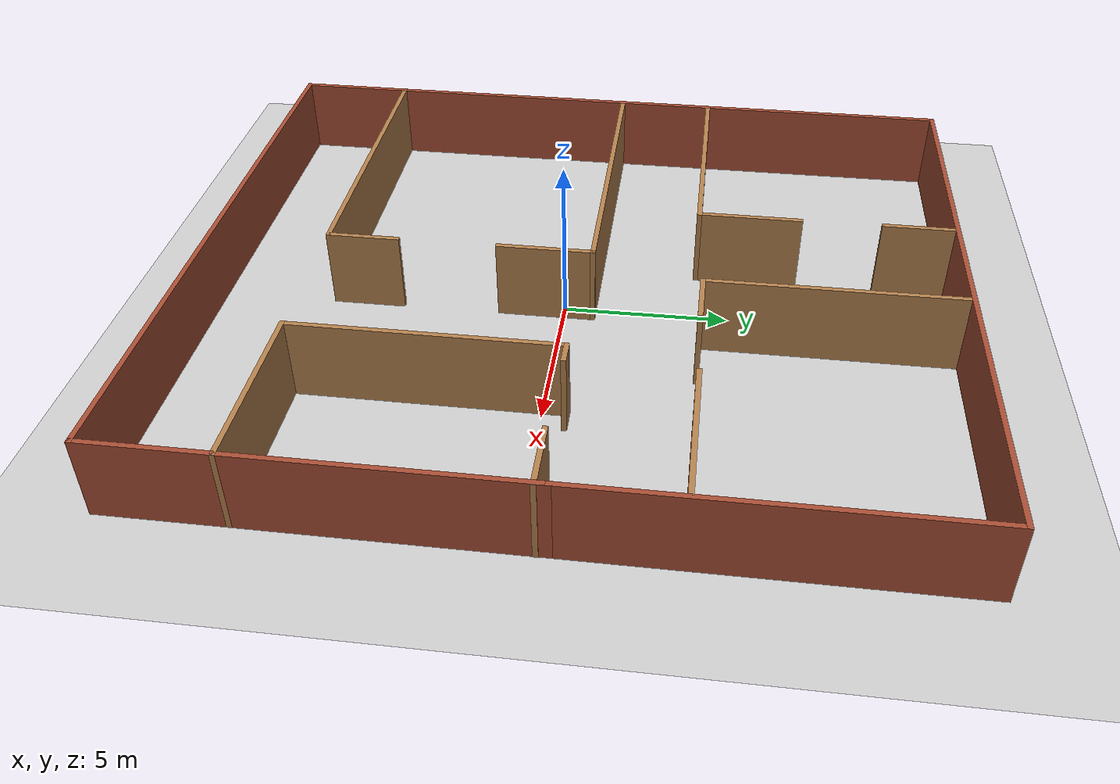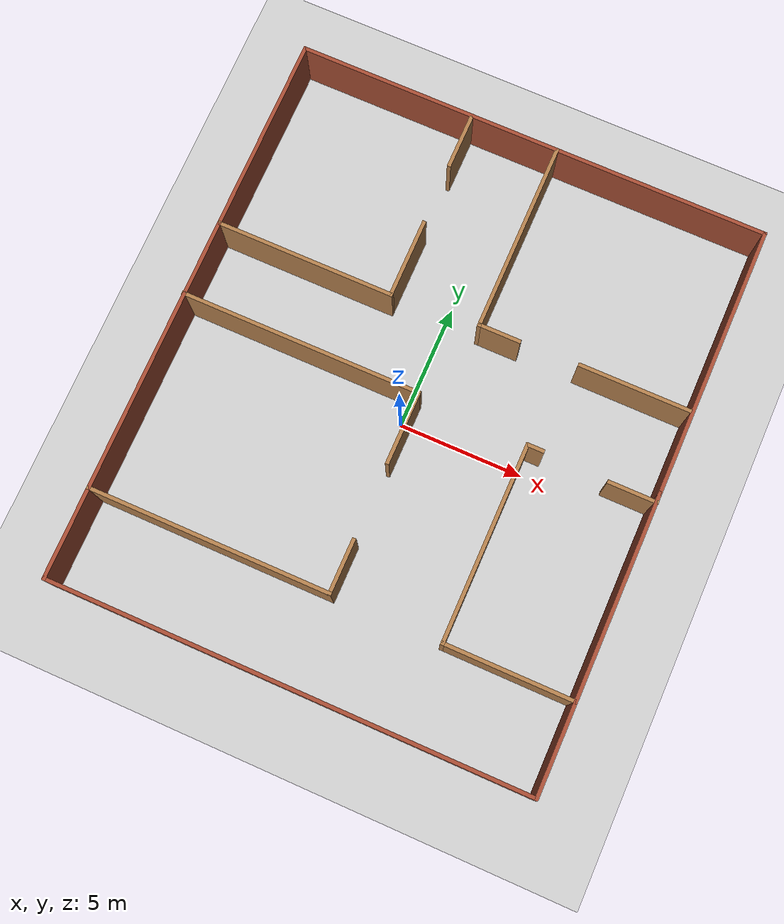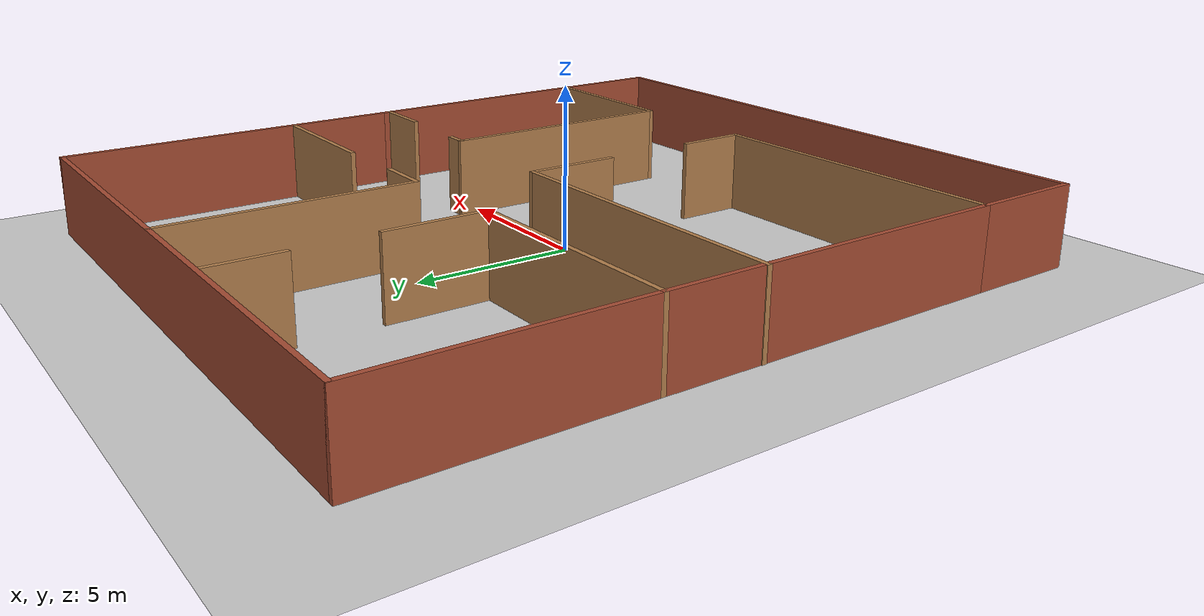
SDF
<sdf version="1.6">
 <world name="default">
  <light name="sun" type="directional">
   <pose>0 0 10 0 -0 0</pose>
   <diffuse>0.8 0.8 0.8 1</diffuse>
   <specular>0.2 0.2 0.2 1</specular>
   <attenuation>
    <range>1000</range>
    <constant>0.9</constant>
    <linear>0.01</linear>
    <quadratic>0.001</quadratic>
   </attenuation>
   <direction>-0.5 0.1 -0.9</direction>
  </light>
  <model name="ground_plane">
   <static>1</static>
   <link name="link">
    <collision name="collision">
     <geometry><plane><normal>0 0 1</normal><size>100 100</size></plane></geometry>
     <surface>
      <contact><collide_bitmask>65535</collide_bitmask></contact>
      <friction><ode><mu>100</mu><mu2>50</mu2></ode></friction>
     </surface>
    </collision>
    <visual name="visual">
     <cast_shadows>0</cast_shadows>
     <geometry><plane><normal>0 0 1</normal><size>100 100</size></plane></geometry>
     <material>
      <script><uri>file://media/materials/scripts/gazebo.material</uri><name>Gazebo/Grey</name></script>
     </material>
    </visual>
   </link>
  </model>
  <gravity>0 0 -9.8</gravity>
  <magnetic_field>6e-06 2.3e-05 -4.2e-05</magnetic_field>
  <atmosphere type="adiabatic"/>
  <physics name="default_physics" default="0" type="ode">
   <max_step_size>0.001</max_step_size>
   <real_time_factor>1</real_time_factor>
   <real_time_update_rate>1000</real_time_update_rate>
  </physics>
  <scene><ambient>0.4 0.4 0.4 1</ambient><background>0.7 0.7 0.7 1</background><shadows>1</shadows></scene>
  <audio><device>default</device></audio>
  <spherical_coordinates>
   <surface_model>EARTH_WGS84</surface_model>
   <latitude_deg>0</latitude_deg>
   <longitude_deg>0</longitude_deg>
   <elevation>0</elevation>
   <heading_deg>0</heading_deg>
  </spherical_coordinates>
  <model name="FetchENV">
   <pose>0.336149 0.527923 0 0 -0 0</pose>
   <link name="Wall_100">
    <collision name="Wall_100_Collision">
     <geometry><box><size>8 0.15 2.5</size></box></geometry>
     <pose>0 0 1.25 0 -0 0</pose>
    </collision>
    <visual name="Wall_100_Visual">
     <pose>0 0 1.25 0 -0 0</pose>
     <geometry><box><size>8 0.15 2.5</size></box></geometry>
     <material>
      <script><uri>file://media/materials/scripts/gazebo.material</uri><name>Gazebo/Bricks</name></script>
      <ambient>1 1 1 1</ambient>
     </material>
     <meta><layer>0</layer></meta>
    </visual>
    <pose>-9.54309 7.35 0 0 -0 1.5708</pose>
   </link>
   <link name="Wall_101">
    <collision name="Wall_101_Collision">
     <geometry><box><size>19.25 0.15 2.5</size></box></geometry>
     <pose>0 0 1.25 0 -0 0</pose>
    </collision>
    <visual name="Wall_101_Visual">
     <pose>0 0 1.25 0 -0 0</pose>
     <geometry><box><size>19.25 0.15 2.5</size></box></geometry>
     <material>
      <script><uri>file://media/materials/scripts/gazebo.material</uri><name>Gazebo/Bricks</name></script>
      <ambient>1 1 1 1</ambient>
     </material>
     <meta><layer>0</layer></meta>
    </visual>
    <pose>0.006908 11.275 0 0 -0 0</pose>
   </link>
   <link name="Wall_102">
    <collision name="Wall_102_Collision">
     <geometry><box><size>11 0.15 2.5</size></box></geometry>
     <pose>0 0 1.25 0 -0 0</pose>
    </collision>
    <visual name="Wall_102_Visual">
     <pose>0 0 1.25 0 -0 0</pose>
     <geometry><box><size>11 0.15 2.5</size></box></geometry>
     <material>
      <script><uri>file://media/materials/scripts/gazebo.material</uri><name>Gazebo/Bricks</name></script>
      <ambient>1 1 1 1</ambient>
     </material>
     <meta><layer>0</layer></meta>
    </visual>
    <pose>9.55691 5.85 0 0 -0 -1.5708</pose>
   </link>
   <link name="Wall_103">
    <collision name="Wall_103_Collision">
     <geometry><box><size>8.25 0.15 2.5</size></box></geometry>
     <pose>0 0 1.25 0 -0 0</pose>
    </collision>
    <visual name="Wall_103_Visual">
     <pose>0 0 1.25 0 -0 0</pose>
     <geometry><box><size>8.25 0.15 2.5</size></box></geometry>
     <material>
      <script><uri>file://media/materials/scripts/gazebo.material</uri><name>Gazebo/Bricks</name></script>
      <ambient>1 1 1 1</ambient>
     </material>
     <meta><layer>0</layer></meta>
    </visual>
    <pose>9.55691 -3.625 0 0 -0 -1.5708</pose>
   </link>
   <link name="Wall_104">
    <collision name="Wall_104_Collision">
     <geometry><box><size>5.25 0.15 2.5</size></box></geometry>
     <pose>0 0 1.25 0 -0 0</pose>
    </collision>
    <visual name="Wall_104_Visual">
     <pose>0 0 1.25 0 -0 0</pose>
     <geometry><box><size>5.25 0.15 2.5</size></box></geometry>
     <material>
      <script><uri>file://media/materials/scripts/gazebo.material</uri><name>Gazebo/Wood</name></script>
      <ambient>1 1 1 1</ambient>
     </material>
     <meta><layer>0</layer></meta>
    </visual>
    <pose>7.00691 -7.675 0 0 -0 3.14159</pose>
   </link>
   <link name="Wall_108">
    <collision name="Wall_108_Collision">
     <geometry><box><size>11.25 0.15 2.5</size></box></geometry>
     <pose>0 0 1.25 0 -0 0</pose>
    </collision>
    <visual name="Wall_108_Visual">
     <pose>0 0 1.25 0 -0 0</pose>
     <geometry><box><size>11.25 0.15 2.5</size></box></geometry>
     <material>
      <script><uri>file://media/materials/scripts/gazebo.material</uri><name>Gazebo/Bricks</name></script>
      <ambient>1 1 1 1</ambient>
     </material>
     <meta><layer>0</layer></meta>
    </visual>
    <pose>-9.54309 -2.125 0 0 -0 -1.5708</pose>
   </link>
   <link name="Wall_109">
    <collision name="Wall_109_Collision">
     <geometry><box><size>9.75 0.15 2.5</size></box></geometry>
     <pose>0 0 1.25 0 -0 0</pose>
    </collision>
    <visual name="Wall_109_Visual">
     <pose>0 0 1.25 0 -0 0</pose>
     <geometry><box><size>9.75 0.15 2.5</size></box></geometry>
     <material>
      <script><uri>file://media/materials/scripts/gazebo.material</uri><name>Gazebo/Wood</name></script>
      <ambient>1 1 1 1</ambient>
     </material>
     <meta><layer>0</layer></meta>
    </visual>
    <pose>-4.74309 -7.675 0 0 -0 0</pose>
   </link>
   <link name="Wall_111">
    <collision name="Wall_111_Collision">
     <geometry><box><size>2.25 0.15 2.5</size></box></geometry>
     <pose>0 0 1.25 0 -0 0</pose>
    </collision>
    <visual name="Wall_111_Visual">
     <pose>0 0 1.25 0 -0 0</pose>
     <geometry><box><size>2.25 0.15 2.5</size></box></geometry>
     <material>
      <script><uri>file://media/materials/scripts/gazebo.material</uri><name>Gazebo/Wood</name></script>
      <ambient>1 1 1 1</ambient>
     </material>
     <meta><layer>0</layer></meta>
    </visual>
    <pose>0.056908 -6.625 0 0 -0 1.5708</pose>
   </link>
   <link name="Wall_113">
    <collision name="Wall_113_Collision">
     <geometry><box><size>3 0.15 2.5</size></box></geometry>
     <pose>0 0 1.25 0 -0 0</pose>
    </collision>
    <visual name="Wall_113_Visual">
     <pose>0 0 1.25 0 -0 0</pose>
     <geometry><box><size>3 0.15 2.5</size></box></geometry>
     <material>
      <script><uri>file://media/materials/scripts/gazebo.material</uri><name>Gazebo/Wood</name></script>
      <ambient>1 1 1 1</ambient>
     </material>
     <meta><layer>0</layer></meta>
    </visual>
    <pose>0.03172 -1.04948 0 0 -0 1.5708</pose>
   </link>
   <link name="Wall_114">
    <collision name="Wall_114_Collision">
     <geometry><box><size>9.75 0.15 2.5</size></box></geometry>
     <pose>0 0 1.25 0 -0 0</pose>
    </collision>
    <visual name="Wall_114_Visual">
     <pose>0 0 1.25 0 -0 0</pose>
     <geometry><box><size>9.75 0.15 2.5</size></box></geometry>
     <material>
      <script><uri>file://media/materials/scripts/gazebo.material</uri><name>Gazebo/Wood</name></script>
      <ambient>1 1 1 1</ambient>
     </material>
     <meta><layer>0</layer></meta>
    </visual>
    <pose>-4.76828 0.375517 0 0 -0 3.14159</pose>
   </link>
   <link name="Wall_116">
    <collision name="Wall_116_Collision">
     <geometry><box><size>8 0.15 2.5</size></box></geometry>
     <pose>0 0 1.25 0 -0 0</pose>
    </collision>
    <visual name="Wall_116_Visual">
     <pose>0 0 1.25 0 -0 0</pose>
     <geometry><box><size>8 0.15 2.5</size></box></geometry>
     <material>
      <script><uri>file://media/materials/scripts/gazebo.material</uri><name>Gazebo/Wood</name></script>
      <ambient>1 1 1 1</ambient>
     </material>
     <meta><layer>0</layer></meta>
    </visual>
    <pose>4.45691 -3.75 0 0 -0 1.5708</pose>
   </link>
   <link name="Wall_120">
    <collision name="Wall_120_Collision">
     <geometry><box><size>0.75 0.15 2.5</size></box></geometry>
     <pose>0 0 1.25 0 -0 0</pose>
    </collision>
    <visual name="Wall_120_Visual">
     <pose>0 0 1.25 0 -0 0</pose>
     <geometry><box><size>0.75 0.15 2.5</size></box></geometry>
     <material>
      <script><uri>file://media/materials/scripts/gazebo.material</uri><name>Gazebo/Wood</name></script>
      <ambient>1 1 1 1</ambient>
     </material>
     <meta><layer>0</layer></meta>
    </visual>
    <pose>4.75691 0.175 0 0 -0 0</pose>
   </link>
   <link name="Wall_122">
    <collision name="Wall_122_Collision">
     <geometry><box><size>2 0.15 2.5</size></box></geometry>
     <pose>0 0 1.25 0 -0 0</pose>
    </collision>
    <visual name="Wall_122_Visual">
     <pose>0 0 1.25 0 -0 0</pose>
     <geometry><box><size>2 0.15 2.5</size></box></geometry>
     <material>
      <script><uri>file://media/materials/scripts/gazebo.material</uri><name>Gazebo/Wood</name></script>
      <ambient>1 1 1 1</ambient>
     </material>
     <meta><layer>0</layer></meta>
    </visual>
    <pose>8.64328 0.074218 0 0 -0 0</pose>
   </link>
   <link name="Wall_126">
    <collision name="Wall_126_Collision">
     <geometry><box><size>2.25 0.15 2.5</size></box></geometry>
     <pose>0 0 1.25 0 -0 0</pose>
    </collision>
    <visual name="Wall_126_Visual">
     <pose>0 0 1.25 0 -0 0</pose>
     <geometry><box><size>2.25 0.15 2.5</size></box></geometry>
     <material>
      <script><uri>file://media/materials/scripts/gazebo.material</uri><name>Gazebo/Wood</name></script>
      <ambient>1 1 1 1</ambient>
     </material>
     <meta><layer>0</layer></meta>
    </visual>
    <pose>-2.47722 10.1244 0 0 -0 -1.5708</pose>
   </link>
   <link name="Wall_128">
    <collision name="Wall_128_Collision">
     <geometry><box><size>7.75 0.15 2.5</size></box></geometry>
     <pose>0 0 1.25 0 -0 0</pose>
    </collision>
    <visual name="Wall_128_Visual">
     <pose>0 0 1.25 0 -0 0</pose>
     <geometry><box><size>7.75 0.15 2.5</size></box></geometry>
     <material>
      <script><uri>file://media/materials/scripts/gazebo.material</uri><name>Gazebo/Wood</name></script>
      <ambient>1 1 1 1</ambient>
     </material>
     <meta><layer>0</layer></meta>
    </visual>
    <pose>1.0586 7.46742 0 0 -0 -1.5708</pose>
   </link>
   <link name="Wall_129">
    <collision name="Wall_129_Collision">
     <geometry><box><size>1.75 0.15 2.5</size></box></geometry>
     <pose>0 0 1.25 0 -0 0</pose>
    </collision>
    <visual name="Wall_129_Visual">
     <pose>0 0 1.25 0 -0 0</pose>
     <geometry><box><size>1.75 0.15 2.5</size></box></geometry>
     <material>
      <script><uri>file://media/materials/scripts/gazebo.material</uri><name>Gazebo/Wood</name></script>
      <ambient>1 1 1 1</ambient>
     </material>
     <meta><layer>0</layer></meta>
    </visual>
    <pose>1.8586 3.66742 0 0 -0 0</pose>
   </link>
   <link name="Wall_131">
    <collision name="Wall_131_Collision">
     <geometry><box><size>4.5 0.15 2.5</size></box></geometry>
     <pose>0 0 1.25 0 -0 0</pose>
    </collision>
    <visual name="Wall_131_Visual">
     <pose>0 0 1.25 0 -0 0</pose>
     <geometry><box><size>4.5 0.15 2.5</size></box></geometry>
     <material>
      <script><uri>file://media/materials/scripts/gazebo.material</uri><name>Gazebo/Wood</name></script>
      <ambient>1 1 1 1</ambient>
     </material>
     <meta><layer>0</layer></meta>
    </visual>
    <pose>7.2579 3.73055 0 0 -0 3.14159</pose>
   </link>
   <link name="Wall_140">
    <collision name="Wall_140_Collision">
     <geometry><box><size>3.75 0.15 2.5</size></box></geometry>
     <pose>0 0 1.25 0 -0 0</pose>
    </collision>
    <visual name="Wall_140_Visual">
     <pose>0 0 1.25 0 -0 0</pose>
     <geometry><box><size>3.75 0.15 2.5</size></box></geometry>
     <material>
      <script><uri>file://media/materials/scripts/gazebo.material</uri><name>Gazebo/Bricks</name></script>
      <ambient>1 1 1 1</ambient>
     </material>
     <meta><layer>0</layer></meta>
    </visual>
    <pose>-9.54309 -9.475 0 0 -0 -1.5708</pose>
   </link>
   <link name="Wall_141">
    <collision name="Wall_141_Collision">
     <geometry><box><size>19.25 0.15 2.5</size></box></geometry>
     <pose>0 0 1.25 0 -0 0</pose>
    </collision>
    <visual name="Wall_141_Visual">
     <pose>0 0 1.25 0 -0 0</pose>
     <geometry><box><size>19.25 0.15 2.5</size></box></geometry>
     <material>
      <script><uri>file://media/materials/scripts/gazebo.material</uri><name>Gazebo/Bricks</name></script>
      <ambient>1 1 1 1</ambient>
     </material>
     <meta><layer>0</layer></meta>
    </visual>
    <pose>0.006908 -11.275 0 0 -0 0</pose>
   </link>
   <link name="Wall_143">
    <collision name="Wall_143_Collision">
     <geometry><box><size>3.75 0.15 2.5</size></box></geometry>
     <pose>0 0 1.25 0 -0 0</pose>
    </collision>
    <visual name="Wall_143_Visual">
     <pose>0 0 1.25 0 -0 0</pose>
     <geometry><box><size>3.75 0.15 2.5</size></box></geometry>
     <material>
      <script><uri>file://media/materials/scripts/gazebo.material</uri><name>Gazebo/Bricks</name></script>
      <ambient>1 1 1 1</ambient>
     </material>
     <meta><layer>0</layer></meta>
    </visual>
    <pose>9.55691 -9.475 0 0 -0 1.5708</pose>
   </link>
   <link name="Wall_98">
    <collision name="Wall_98_Collision">
     <geometry><box><size>3.25 0.15 2.5</size></box></geometry>
     <pose>0 0 1.25 0 -0 0</pose>
    </collision>
    <visual name="Wall_98_Visual">
     <pose>0 0 1.25 0 -0 0</pose>
     <geometry><box><size>3.25 0.15 2.5</size></box></geometry>
     <material>
      <script><uri>file://media/materials/scripts/gazebo.material</uri><name>Gazebo/Wood</name></script>
      <ambient>1 1 1 1</ambient>
     </material>
     <meta><layer>0</layer></meta>
    </visual>
    <pose>-2.44309 4.975 0 0 -0 -1.5708</pose>
   </link>
   <link name="Wall_99">
    <collision name="Wall_99_Collision">
     <geometry><box><size>7.25 0.15 2.5</size></box></geometry>
     <pose>0 0 1.25 0 -0 0</pose>
    </collision>
    <visual name="Wall_99_Visual">
     <pose>0 0 1.25 0 -0 0</pose>
     <geometry><box><size>7.25 0.15 2.5</size></box></geometry>
     <material>
      <script><uri>file://media/materials/scripts/gazebo.material</uri><name>Gazebo/Wood</name></script>
      <ambient>1 1 1 1</ambient>
     </material>
     <meta><layer>0</layer></meta>
    </visual>
    <pose>-5.99309 3.425 0 0 -0 3.14159</pose>
   </link>
   <static>1</static>
  </model>
 </world>
</sdf>
